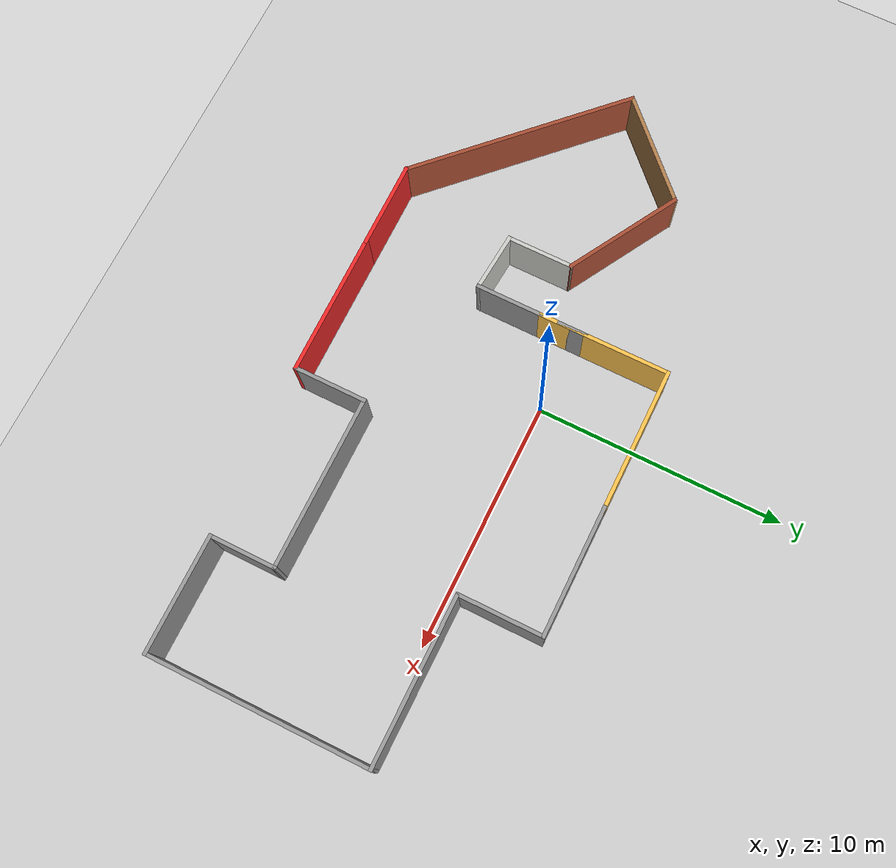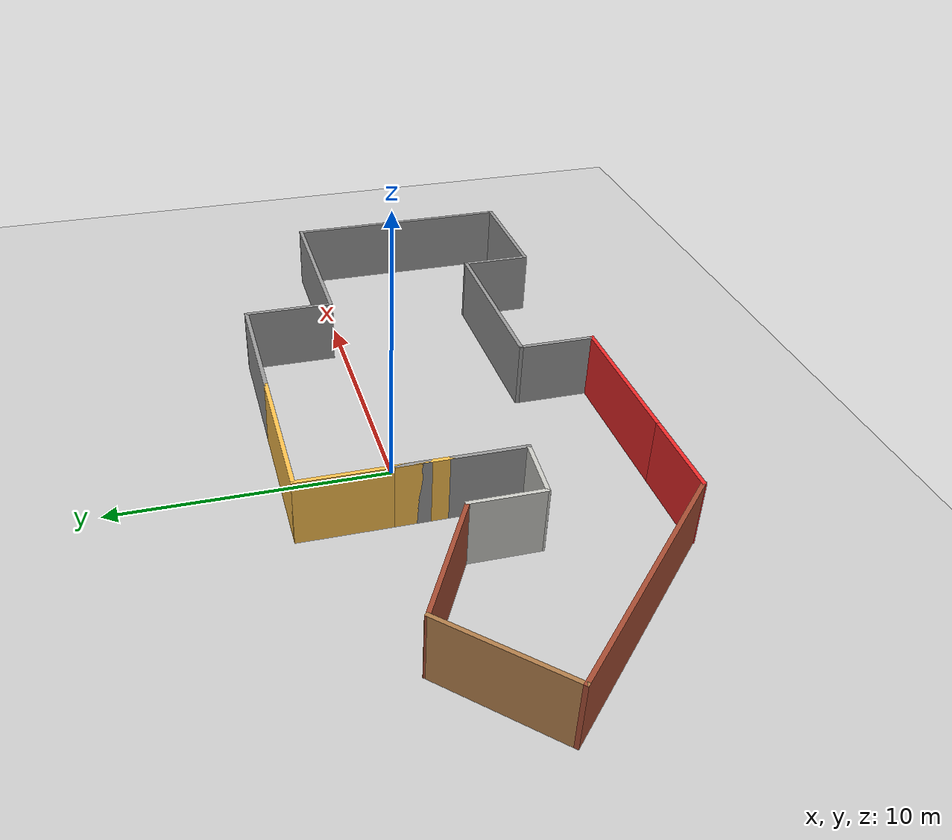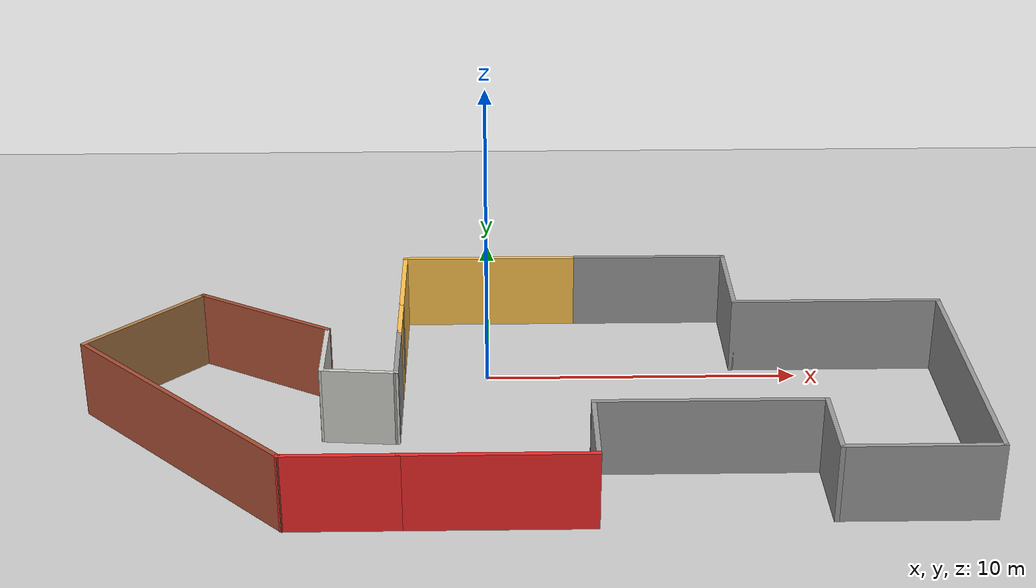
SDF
<sdf version="1.7">
 <world name="default">
  <light name="sun" type="directional">
   <pose>0 0 10 0 -0 0</pose>
   <diffuse>0.8 0.8 0.8 1</diffuse>
   <specular>0.2 0.2 0.2 1</specular>
   <attenuation>
    <range>1000</range>
    <constant>0.9</constant>
    <linear>0.01</linear>
    <quadratic>0.001</quadratic>
   </attenuation>
   <direction>-0.5 0.1 -0.9</direction>
   <spot><inner_angle>0</inner_angle><outer_angle>0</outer_angle><falloff>0</falloff></spot>
  </light>
  <model name="ground_plane">
   <static>1</static>
   <link name="link">
    <collision name="collision">
     <geometry><plane><normal>0 0 1</normal><size>100 100</size></plane></geometry>
     <surface><friction><ode><mu>100</mu><mu2>50</mu2></ode></friction></surface>
    </collision>
    <visual name="visual">
     <cast_shadows>0</cast_shadows>
     <geometry><plane><normal>0 0 1</normal><size>100 100</size></plane></geometry>
     <material>
      <script><uri>file://media/materials/scripts/gazebo.material</uri><name>Gazebo/Grey</name></script>
     </material>
    </visual>
   </link>
  </model>
  <gravity>0 0 -9.8</gravity>
  <magnetic_field>6e-06 2.3e-05 -4.2e-05</magnetic_field>
  <atmosphere type="adiabatic"/>
  <physics type="ode">
   <max_step_size>0.001</max_step_size>
   <real_time_factor>1</real_time_factor>
   <real_time_update_rate>1000</real_time_update_rate>
  </physics>
  <scene><ambient>0.4 0.4 0.4 1</ambient><background>0.7 0.7 0.7 1</background><shadows>1</shadows></scene>
  <spherical_coordinates>
   <surface_model>EARTH_WGS84</surface_model>
   <latitude_deg>0</latitude_deg>
   <longitude_deg>0</longitude_deg>
   <elevation>0</elevation>
   <heading_deg>0</heading_deg>
  </spherical_coordinates>
  <model name="shape">
   <pose>1.04874 -2.39053 0 0 -0 0</pose>
   <link name="Wall_0">
    <collision name="Wall_0_Collision">
     <geometry><box><size>2.75 0.15 2.5</size></box></geometry>
     <pose>0 0 1.25 0 -0 0</pose>
    </collision>
    <visual name="Wall_0_Visual">
     <pose>0 0 1.25 0 -0 0</pose>
     <geometry><box><size>2.75 0.15 2.5</size></box></geometry>
     <material>
      <script><uri>file://media/materials/scripts/gazebo.material</uri><name>Gazebo/Grey</name></script>
      <ambient>1 1 1 1</ambient>
     </material>
     <meta><layer>0</layer></meta>
    </visual>
    <pose>-3.77874 -0.259467 0 0 -0 1.5708</pose>
   </link>
   <link name="Wall_1">
    <collision name="Wall_1_Collision">
     <geometry><box><size>2 0.15 2.5</size></box></geometry>
     <pose>0 0 1.25 0 -0 0</pose>
    </collision>
    <visual name="Wall_1_Visual">
     <pose>0 0 1.25 0 -0 0</pose>
     <geometry><box><size>2 0.15 2.5</size></box></geometry>
     <material>
      <script><uri>file://media/materials/scripts/gazebo.material</uri><name>Gazebo/Grey</name></script>
      <ambient>1 0.764706 0.305882 1</ambient>
     </material>
     <meta><layer>0</layer></meta>
    </visual>
    <pose>-3.77874 1.96553 0 0 -0 1.5708</pose>
   </link>
   <link name="Wall_10">
    <collision name="Wall_10_Collision">
     <geometry><box><size>4.75 0.15 2.5</size></box></geometry>
     <pose>0 0 1.25 0 -0 0</pose>
    </collision>
    <visual name="Wall_10_Visual">
     <pose>0 0 1.25 0 -0 0</pose>
     <geometry><box><size>4.75 0.15 2.5</size></box></geometry>
     <material>
      <script><uri>file://media/materials/scripts/gazebo.material</uri><name>Gazebo/Grey</name></script>
      <ambient>1 1 1 1</ambient>
     </material>
     <meta><layer>0</layer></meta>
    </visual>
    <pose>11.2213 -5.95947 0 0 -0 3.14159</pose>
   </link>
   <link name="Wall_11">
    <collision name="Wall_11_Collision">
     <geometry><box><size>2.75 0.15 2.5</size></box></geometry>
     <pose>0 0 1.25 0 -0 0</pose>
    </collision>
    <visual name="Wall_11_Visual">
     <pose>0 0 1.25 0 -0 0</pose>
     <geometry><box><size>2.75 0.15 2.5</size></box></geometry>
     <material>
      <script><uri>file://media/materials/scripts/gazebo.material</uri><name>Gazebo/Grey</name></script>
      <ambient>1 1 1 1</ambient>
     </material>
     <meta><layer>0</layer></meta>
    </visual>
    <pose>8.92126 -4.65947 0 0 -0 1.5708</pose>
   </link>
   <link name="Wall_12">
    <collision name="Wall_12_Collision">
     <geometry><box><size>7 0.15 2.5</size></box></geometry>
     <pose>0 0 1.25 0 -0 0</pose>
    </collision>
    <visual name="Wall_12_Visual">
     <pose>0 0 1.25 0 -0 0</pose>
     <geometry><box><size>7 0.15 2.5</size></box></geometry>
     <material>
      <script><uri>file://media/materials/scripts/gazebo.material</uri><name>Gazebo/Grey</name></script>
      <ambient>1 1 1 1</ambient>
     </material>
     <meta><layer>0</layer></meta>
    </visual>
    <pose>5.49626 -3.35947 0 0 -0 3.14159</pose>
   </link>
   <link name="Wall_13">
    <collision name="Wall_13_Collision">
     <geometry><box><size>3 0.15 2.5</size></box></geometry>
     <pose>0 0 1.25 0 -0 0</pose>
    </collision>
    <visual name="Wall_13_Visual">
     <pose>0 0 1.25 0 -0 0</pose>
     <geometry><box><size>3 0.15 2.5</size></box></geometry>
     <material>
      <script><uri>file://media/materials/scripts/gazebo.material</uri><name>Gazebo/Grey</name></script>
      <ambient>1 1 1 1</ambient>
     </material>
     <meta><layer>0</layer></meta>
    </visual>
    <pose>2.07126 -4.78447 0 0 -0 -1.5708</pose>
   </link>
   <link name="Wall_14">
    <collision name="Wall_14_Collision">
     <geometry><box><size>5.75 0.15 2.5</size></box></geometry>
     <pose>0 0 1.25 0 -0 0</pose>
    </collision>
    <visual name="Wall_14_Visual">
     <pose>0 0 1.25 0 -0 0</pose>
     <geometry><box><size>5.75 0.15 2.5</size></box></geometry>
     <material>
      <script><uri>file://media/materials/scripts/gazebo.material</uri><name>Gazebo/Grey</name></script>
      <ambient>0.937255 0.160784 0.160784 1</ambient>
     </material>
     <meta><layer>0</layer></meta>
    </visual>
    <pose>-0.728742 -6.20947 0 0 -0 3.14159</pose>
   </link>
   <link name="Wall_15">
    <collision name="Wall_15_Collision">
     <geometry><box><size>3.5 0.15 2.5</size></box></geometry>
     <pose>0 0 1.25 0 -0 0</pose>
    </collision>
    <visual name="Wall_15_Visual">
     <pose>0 0 1.25 0 -0 0</pose>
     <geometry><box><size>3.5 0.15 2.5</size></box></geometry>
     <material>
      <script><uri>file://media/materials/scripts/gazebo.material</uri><name>Gazebo/Grey</name></script>
      <ambient>0.937255 0.160784 0.160784 1</ambient>
     </material>
     <meta><layer>0</layer></meta>
    </visual>
    <pose>-5.20374 -6.20947 0 0 -0 3.14159</pose>
   </link>
   <link name="Wall_16">
    <collision name="Wall_16_Collision">
     <geometry><box><size>9.5 0.15 2.5</size></box></geometry>
     <pose>0 0 1.25 0 -0 0</pose>
    </collision>
    <visual name="Wall_16_Visual">
     <pose>0 0 1.25 0 -0 0</pose>
     <geometry><box><size>9.5 0.15 2.5</size></box></geometry>
     <material>
      <script><uri>file://media/materials/scripts/gazebo.material</uri><name>Gazebo/Bricks</name></script>
      <ambient>1 1 1 1</ambient>
     </material>
     <meta><layer>0</layer></meta>
    </visual>
    <pose>-10.1845 -2.90374 0 0 -0 2.35619</pose>
   </link>
   <link name="Wall_17">
    <collision name="Wall_17_Collision">
     <geometry><box><size>4.75 0.15 2.5</size></box></geometry>
     <pose>0 0 1.25 0 -0 0</pose>
    </collision>
    <visual name="Wall_17_Visual">
     <pose>0 0 1.25 0 -0 0</pose>
     <geometry><box><size>4.75 0.15 2.5</size></box></geometry>
     <material>
      <script><uri>file://media/materials/scripts/gazebo.material</uri><name>Gazebo/Wood</name></script>
      <ambient>1 1 1 1</ambient>
     </material>
     <meta><layer>0</layer></meta>
    </visual>
    <pose>-11.8638 2.02833 0 0 -0 0.785398</pose>
   </link>
   <link name="Wall_18">
    <collision name="Wall_18_Collision">
     <geometry><box><size>5 0.15 2.5</size></box></geometry>
     <pose>0 0 1.25 0 -0 0</pose>
    </collision>
    <visual name="Wall_18_Visual">
     <pose>0 0 1.25 0 -0 0</pose>
     <geometry><box><size>5 0.15 2.5</size></box></geometry>
     <material>
      <script><uri>file://media/materials/scripts/gazebo.material</uri><name>Gazebo/Bricks</name></script>
      <ambient>1 1 1 1</ambient>
     </material>
     <meta><layer>0</layer></meta>
    </visual>
    <pose>-8.13739 2.44217 0 0 -0 -0.523599</pose>
   </link>
   <link name="Wall_19">
    <collision name="Wall_19_Collision">
     <geometry><box><size>2.75 0.15 2.5</size></box></geometry>
     <pose>0 0 1.25 0 -0 0</pose>
    </collision>
    <visual name="Wall_19_Visual">
     <pose>0 0 1.25 0 -0 0</pose>
     <geometry><box><size>2.75 0.15 2.5</size></box></geometry>
     <material>
      <script><uri>file://media/materials/scripts/gazebo.material</uri><name>Gazebo/CeilingTiled</name></script>
      <ambient>1 1 1 1</ambient>
     </material>
     <meta><layer>0</layer></meta>
    </visual>
    <pose>-6.03728 -0.070327 0 0 -0 -1.5708</pose>
   </link>
   <link name="Wall_2">
    <collision name="Wall_2_Collision">
     <geometry><box><size>1.25 0.15 2.5</size></box></geometry>
     <pose>0 0 1.25 0 -0 0</pose>
    </collision>
    <visual name="Wall_2_Visual">
     <pose>0 0 1.25 0 -0 0</pose>
     <geometry><box><size>1.25 0.15 2.5</size></box></geometry>
     <material>
      <script><uri>file://media/materials/scripts/gazebo.material</uri><name>Gazebo/Grey</name></script>
      <ambient>1 1 1 1</ambient>
     </material>
     <meta><layer>0</layer></meta>
    </visual>
    <pose>-3.77874 2.34053 0 0 -0 -1.5708</pose>
   </link>
   <link name="Wall_20">
    <collision name="Wall_20_Collision">
     <geometry><box><size>2.41644 0.15 2.5</size></box></geometry>
     <pose>0 0 1.25 0 -0 0</pose>
    </collision>
    <visual name="Wall_20_Visual">
     <pose>0 0 1.25 0 -0 0</pose>
     <geometry><box><size>2.41644 0.15 2.5</size></box></geometry>
     <material>
      <script><uri>file://media/materials/scripts/gazebo.material</uri><name>Gazebo/CeilingTiled</name></script>
      <ambient>1 1 1 1</ambient>
     </material>
     <meta><layer>0</layer></meta>
    </visual>
    <pose>-4.90801 -1.4649 0 0 -0 -0.083549</pose>
   </link>
   <link name="Wall_4">
    <collision name="Wall_4_Collision">
     <geometry><box><size>3.5 0.15 2.5</size></box></geometry>
     <pose>0 0 1.25 0 -0 0</pose>
    </collision>
    <visual name="Wall_4_Visual">
     <pose>0 0 1.25 0 -0 0</pose>
     <geometry><box><size>3.5 0.15 2.5</size></box></geometry>
     <material>
      <script><uri>file://media/materials/scripts/gazebo.material</uri><name>Gazebo/Grey</name></script>
      <ambient>1 0.764706 0.305882 1</ambient>
     </material>
     <meta><layer>0</layer></meta>
    </visual>
    <pose>-3.77874 4.56553 0 0 -0 1.5708</pose>
   </link>
   <link name="Wall_5">
    <collision name="Wall_5_Collision">
     <geometry><box><size>5.75 0.15 2.5</size></box></geometry>
     <pose>0 0 1.25 0 -0 0</pose>
    </collision>
    <visual name="Wall_5_Visual">
     <pose>0 0 1.25 0 -0 0</pose>
     <geometry><box><size>5.75 0.15 2.5</size></box></geometry>
     <material>
      <script><uri>file://media/materials/scripts/gazebo.material</uri><name>Gazebo/Grey</name></script>
      <ambient>1 0.764706 0.305882 1</ambient>
     </material>
     <meta><layer>0</layer></meta>
    </visual>
    <pose>-0.978742 6.24053 0 0 -0 0</pose>
   </link>
   <link name="Wall_6">
    <collision name="Wall_6_Collision">
     <geometry><box><size>5.25 0.15 2.5</size></box></geometry>
     <pose>0 0 1.25 0 -0 0</pose>
    </collision>
    <visual name="Wall_6_Visual">
     <pose>0 0 1.25 0 -0 0</pose>
     <geometry><box><size>5.25 0.15 2.5</size></box></geometry>
     <material>
      <script><uri>file://media/materials/scripts/gazebo.material</uri><name>Gazebo/Grey</name></script>
      <ambient>1 1 1 1</ambient>
     </material>
     <meta><layer>0</layer></meta>
    </visual>
    <pose>4.37126 6.24053 0 0 -0 0</pose>
   </link>
   <link name="Wall_7">
    <collision name="Wall_7_Collision">
     <geometry><box><size>3.5 0.15 2.5</size></box></geometry>
     <pose>0 0 1.25 0 -0 0</pose>
    </collision>
    <visual name="Wall_7_Visual">
     <pose>0 0 1.25 0 -0 0</pose>
     <geometry><box><size>3.5 0.15 2.5</size></box></geometry>
     <material>
      <script><uri>file://media/materials/scripts/gazebo.material</uri><name>Gazebo/Grey</name></script>
      <ambient>1 1 1 1</ambient>
     </material>
     <meta><layer>0</layer></meta>
    </visual>
    <pose>6.92126 4.56553 0 0 -0 -1.5708</pose>
   </link>
   <link name="Wall_8">
    <collision name="Wall_8_Collision">
     <geometry><box><size>6.75 0.15 2.5</size></box></geometry>
     <pose>0 0 1.25 0 -0 0</pose>
    </collision>
    <visual name="Wall_8_Visual">
     <pose>0 0 1.25 0 -0 0</pose>
     <geometry><box><size>6.75 0.15 2.5</size></box></geometry>
     <material>
      <script><uri>file://media/materials/scripts/gazebo.material</uri><name>Gazebo/Grey</name></script>
      <ambient>1 1 1 1</ambient>
     </material>
     <meta><layer>0</layer></meta>
    </visual>
    <pose>10.2213 2.89053 0 0 -0 0</pose>
   </link>
   <link name="Wall_9">
    <collision name="Wall_9_Collision">
     <geometry><box><size>9 0.15 2.5</size></box></geometry>
     <pose>0 0 1.25 0 -0 0</pose>
    </collision>
    <visual name="Wall_9_Visual">
     <pose>0 0 1.25 0 -0 0</pose>
     <geometry><box><size>9 0.15 2.5</size></box></geometry>
     <material>
      <script><uri>file://media/materials/scripts/gazebo.material</uri><name>Gazebo/Grey</name></script>
      <ambient>1 1 1 1</ambient>
     </material>
     <meta><layer>0</layer></meta>
    </visual>
    <pose>13.5213 -1.53447 0 0 -0 -1.5708</pose>
   </link>
   <static>1</static>
  </model>
 </world>
</sdf>
